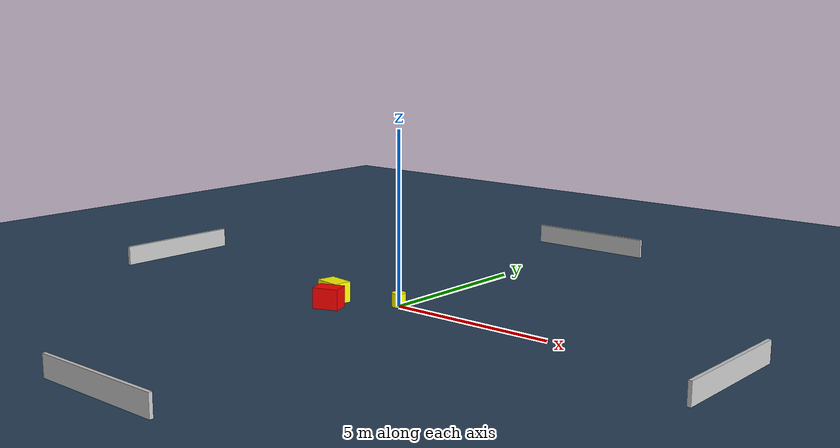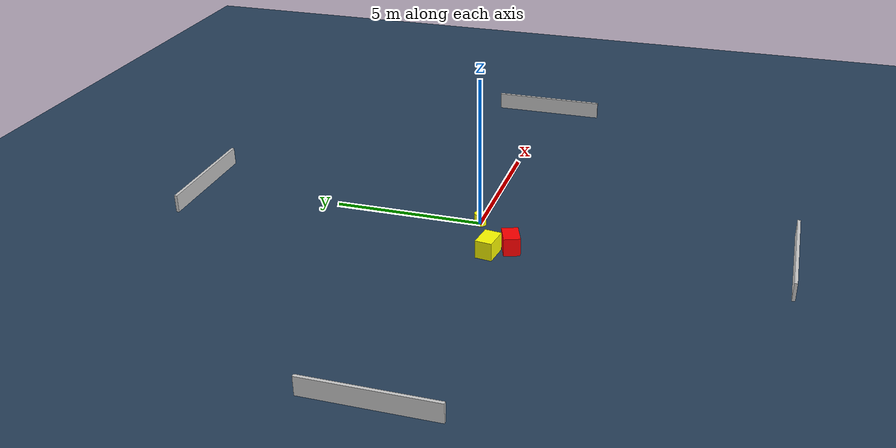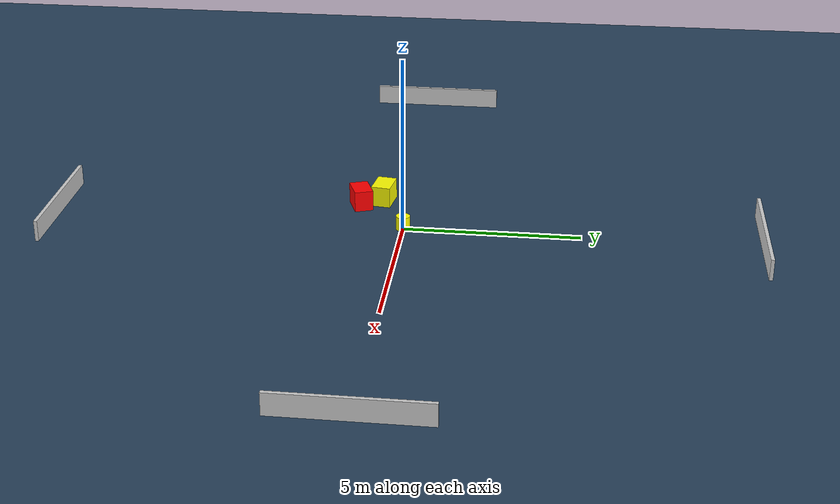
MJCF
<?xml version="1.0" ?>
<mujoco model="generated_environment">
  <option timestep="0.01" integrator="RK4" cone="elliptic"/>
  <default>
    <geom density="1"/>
  </default>
  <asset>
    <texture builtin="gradient" height="3072" name="skybox" rgb1="0.3 0.5 0.7" rgb2="0 0 0" type="skybox" width="512"/>
    <texture builtin="checker" height="300" name="groundplane" rgb1="0.2 0.3 0.4" rgb2="0.1 0.2 0.3" type="2d" width="300"/>
    <material name="groundplane" reflectance="0.2" texrepeat="5 5" texture="groundplane"/>
  </asset>
  <worldbody>
    <light dir="0 0 -1" directional="true" pos="0 0 1.5"/>
    <geom condim="3" friction="0.5 0.005 0.001" material="groundplane" name="floor" pos="0 0 0" size="0 0 0.05" type="plane"/>
    <body name="walls">
      <geom name="wall_1" condim="4" pos="-10.0 0.0 0.3" rgba="0.800000011920929 0.800000011920929 0.800000011920929 1.0" size="0.05 2.0 0.3" type="box"/>
      <geom name="wall_2" condim="4" pos="10.0 0.0 0.3" rgba="0.800000011920929 0.800000011920929 0.800000011920929 1.0" size="0.05 2.0 0.3" type="box"/>
      <geom name="wall_3" condim="4" pos="0.0 -10.0 0.3" rgba="0.800000011920929 0.800000011920929 0.800000011920929 1.0" size="2.0 0.05 0.3" type="box"/>
      <geom name="wall_4" condim="4" pos="0.0 10.0 0.3" rgba="0.800000011920929 0.800000011920929 0.800000011920929 1.0" size="2.0 0.05 0.3" type="box"/>
    </body>
    <body name="robot">
      <joint name="joint_x" type="slide" pos="0 0 0" axis="1 0 0"/>
      <joint name="joint_y" type="slide" pos="0 0 0" axis="0 1 0"/>
      <geom name="robot" type="cylinder" pos="0.0 0.0 0.2" size="0.2 0.2 0.0" mass="5.0" friction="1.0 0.005 0.0001" condim="4" rgba="1.0 1.0 0.0 1.0"/>
    </body>
    <body name="obstacle_1_movable">
      <geom name="obstacle_1_movable" condim="4" pos="-1.8003251799581101 -0.773192646652302 0.3" euler="0 0 172.19995693565988" friction="0.0 0.005 0.001" rgba="1.0 1.0 0.0 1.0" size="0.40112810328875437 0.2769377531369508 0.3" type="box" mass="0.1"/>
      <joint type="free"/>
    </body>
    <body name="obstacle_2_static">
      <geom name="obstacle_2_static" condim="4" pos="-1.4065901247510417 -1.3923981126848504 0.3" euler="0 0 290.5710076746358" friction="0.0 0.005 0.001" rgba="1.0 0.0 0.0 1.0" size="0.2670082966098778 0.37778315907180515 0.3" type="box"/>
    </body>
  </worldbody>
  <actuator>
    <motor name="actuator_x" joint="joint_x" gear="1" ctrlrange="-1 1"/>
    <motor name="actuator_y" joint="joint_y" gear="1" ctrlrange="-1 1"/>
  </actuator>
</mujoco>
